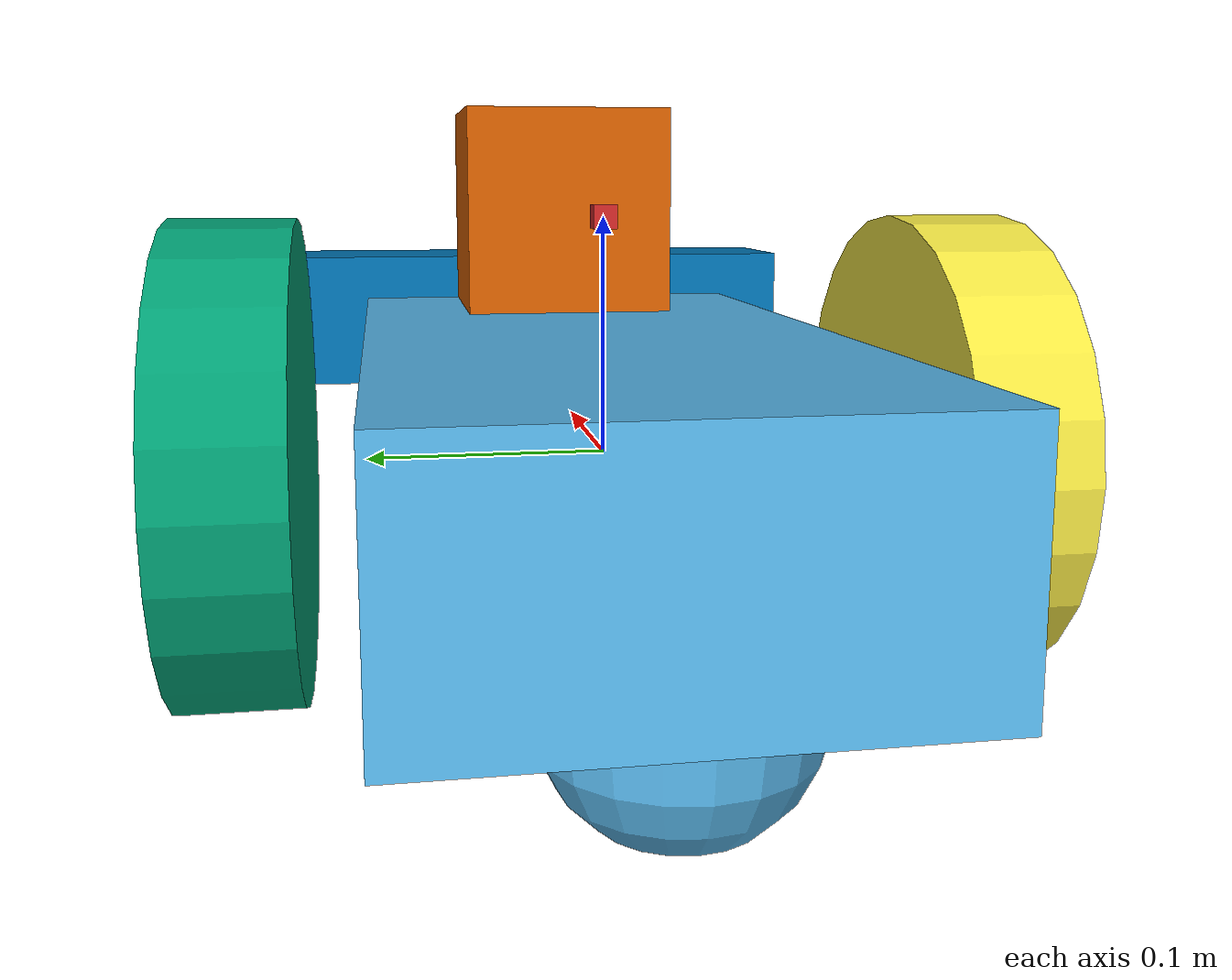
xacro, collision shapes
<?xml version='1.0'?>

<robot name="udacity_bot" xmlns:xacro="http://www.ros.org/wiki/xacro">
  <xacro:include filename="$(find udacity_bot)/urdf/udacity_bot.gazebo" />
  <link name="robot_footprint"></link>

  <joint name="robot_footprint_joint" type="fixed">
    <origin xyz="0 0 0" rpy="0 0 0" />
    <parent link="robot_footprint"/>
    <child link="chassis" />
  </joint>

  <link name='chassis'>
    <pose>0 0 0.1 0 0 0</pose>

    <inertial>
      <mass value="15.0"/>
      <origin xyz="0.0 0 0" rpy=" 0 0 0"/>
      <inertia
          ixx="0.1" ixy="0" ixz="0"
          iyy="0.1" iyz="0"
          izz="0.1"
      />
    </inertial>

    <collision name='collision'>
      <origin xyz="0 0 0" rpy=" 0 0 0"/>
      <geometry>
        <box size=".4 .2 .1"/>
      </geometry>
    </collision>

    <visual name='chassis_visual'>
      <origin xyz="0 0 0" rpy=" 0 0 0"/>
      <geometry>
         <mesh filename="package://udacity_bot/meshes/chassis.dae" scale ="0.9 0.5 0.5"/>
      </geometry>
    </visual>

    <collision name='back_caster_collision'>
      <origin xyz="-0.15 0 -0.05" rpy=" 0 0 0"/>
      <geometry>
        <sphere radius="0.05"/>
      </geometry>
      <surface>
        <friction>
          <ode>
            <mu>0</mu>
            <mu2>0</mu2>
            <slip1>1.0</slip1>
            <slip2>1.0</slip2>
          </ode>
        </friction>
      </surface>
    </collision>

    <visual name='back_caster_visual'>
      <origin xyz="-0.15 0 -0.05" rpy=" 0 0 0"/>
      <geometry>
        <sphere radius="0.05"/>
      </geometry>
    </visual>

    <collision name='front_caster_collision'>
      <origin xyz="0.15 0 -0.05" rpy=" 0 0 0"/>
      <geometry>
        <sphere radius="0.05"/>
      </geometry>
      <surface>
        <friction>
          <ode>
            <mu>0</mu>
            <mu2>0</mu2>
            <slip1>1.0</slip1>
            <slip2>1.0</slip2>
          </ode>
        </friction>
      </surface>
    </collision>

    <visual name='front_caster_visual'>
      <origin xyz="0.15 0 -0.05" rpy=" 0 0 0"/>
      <geometry>
        <sphere radius="0.05"/>
      </geometry>
    </visual>

  </link>

  <link name='left_wheel'>

    <inertial>
      <mass value="5.0"/>
      <origin xyz="0.0 0 0" rpy=" 0 1.5707 1.5707"/>
      <inertia
          ixx="0.1" ixy="0" ixz="0"
          iyy="0.1" iyz="0"
          izz="0.1"
      />
    </inertial>

    <collision name='collision'>
      <origin xyz="0 0 0" rpy=" 0 1.5707 1.5707"/>
      <geometry>
        <cylinder length="0.05" radius="0.1" />
      </geometry>
    </collision>

    <visual name='left_wheel_visual'>
      <origin xyz="0 0 0" rpy=" 0 0 0"/>
      <geometry>
         <mesh filename="package://udacity_bot/meshes/wheel.dae" />
      </geometry>
    </visual>

  </link>

  <link name='right_wheel'>

    <inertial>
      <mass value="5.0"/>
      <origin xyz="0.0 0 0" rpy=" 0 1.5707 1.5707"/>
      <inertia
          ixx="0.1" ixy="0" ixz="0"
          iyy="0.1" iyz="0"
          izz="0.1"
      />
    </inertial>

    <collision name='collision'>
      <origin xyz="0 0 0" rpy=" 0 1.5707 1.5707"/>
      <geometry>
        <cylinder length="0.05" radius="0.1" />
      </geometry>
    </collision>

    <visual name='right_wheel_visual'>
      <origin xyz="0 0 0" rpy=" 0 0 0"/>
      <geometry>
        <mesh filename="package://udacity_bot/meshes/wheel.dae" />
      </geometry>
    </visual>

  </link>

  <joint type="continuous" name="left_wheel_hinge">
    <origin xyz="0 0.15 0" rpy="0 0 0"/>
    <child link="left_wheel"/>
    <parent link="chassis"/>
    <axis xyz="0 1 0" rpy="0 0 0"/>
    <limit effort="10000" velocity="1000"/>
    <joint_properties damping="1.0" friction="1.0"/>
  </joint>

  <joint type="continuous" name="right_wheel_hinge">
    <origin xyz="0 -0.15 0" rpy="0 0 0"/>
    <child link="right_wheel"/>
    <parent link="chassis"/>
    <axis xyz="0 1 0" rpy="0 0 0"/>
    <limit effort="10000" velocity="1000"/>
    <joint_properties damping="1.0" friction="1.0"/>
  </joint>

  <link name='camera'>

    <inertial>
      <mass value="0.1"/>
      <origin xyz="0 0 0.036" rpy=" 0 0 0"/>
      <inertia
          ixx="1e-6" ixy="0" ixz="0"
          iyy="1e-6" iyz="0"
          izz="1e-6"
      />
    </inertial>

    <collision name='collision'>
      <origin xyz="0 0 0.036" rpy=" 0 0 0"/>
      <geometry>
        <box size="0.073000 0.276000 0.072000"/>
      </geometry>
    </collision>

    <visual name='camera_visual'>
      <origin xyz="0 0 0" rpy=" 0 0 0"/>
      <geometry>
        <mesh filename="package://udacity_bot/meshes/kinect.dae" />
      </geometry>
    </visual>
  </link>

  <joint type="fixed" name="camera_joint">
    <origin xyz="0.25 0 0" rpy="0 0 0"/>
    <child link="camera"/>
    <parent link="chassis"/>
    <axis xyz="0 0 0" rpy="0 0 0"/>
  </joint>

  <link name='hokuyo'>

    <inertial>
      <mass value="0.1"/>
      <origin xyz="0.0 0 0" rpy=" 0 0 0"/>
      <inertia
          ixx="1e-6" ixy="0" ixz="0"
          iyy="1e-6" iyz="0"
          izz="1e-6"
      />
    </inertial>

    <collision name='collision'>
      <origin xyz="0 0 0" rpy=" 0 0 0"/>
      <geometry>
        <box size="0.1 0.1 0.1"/>
      </geometry>
    </collision>

    <visual name='hokuyo_visual'>
      <origin xyz="0 0 0" rpy=" 0 0 0"/>
      <geometry>
        <mesh filename="package://udacity_bot/meshes/hokuyo.dae"/>
      </geometry>
    </visual>
  </link>

  <joint type="fixed" name="hokuyo_joint">
    <origin xyz="0.15 0 0.1" rpy="0 0 0"/>
    <child link="hokuyo"/>
    <parent link="chassis"/>
    <axis xyz="0 0 0" rpy="0 0 0"/>
  </joint>

  <link name="imu_link">
    <inertial>
      <mass value="0.001"/>
      <origin rpy="0 0 0" xyz="0 0 0"/>
      <inertia ixx="0.0001" ixy="0" ixz="0" iyy="0.000001" iyz="0" izz="0.0001"/>
    </inertial>
    <visual>
      <origin rpy="0 0 0" xyz="0 0 0"/>
      <geometry>
        <box size="0.01 0.01 0.01"/>
      </geometry>
      <material name="red"/>
    </visual>
    <collision>
      <origin rpy="0 0 0" xyz="0 0 0"/>
      <geometry>
       <box size=".01 .01 .01"/>
      </geometry>
    </collision>
  </link>

   <!--IMU : joint , link , sensor  -->
  <joint name="imu_joint" type="fixed">
    <axis xyz="1 0 0"/>
    <origin xyz="0 0 0.1"/>
    <parent link="robot_footprint"/>
    <child link="imu_link"/>
  </joint>

</robot>
